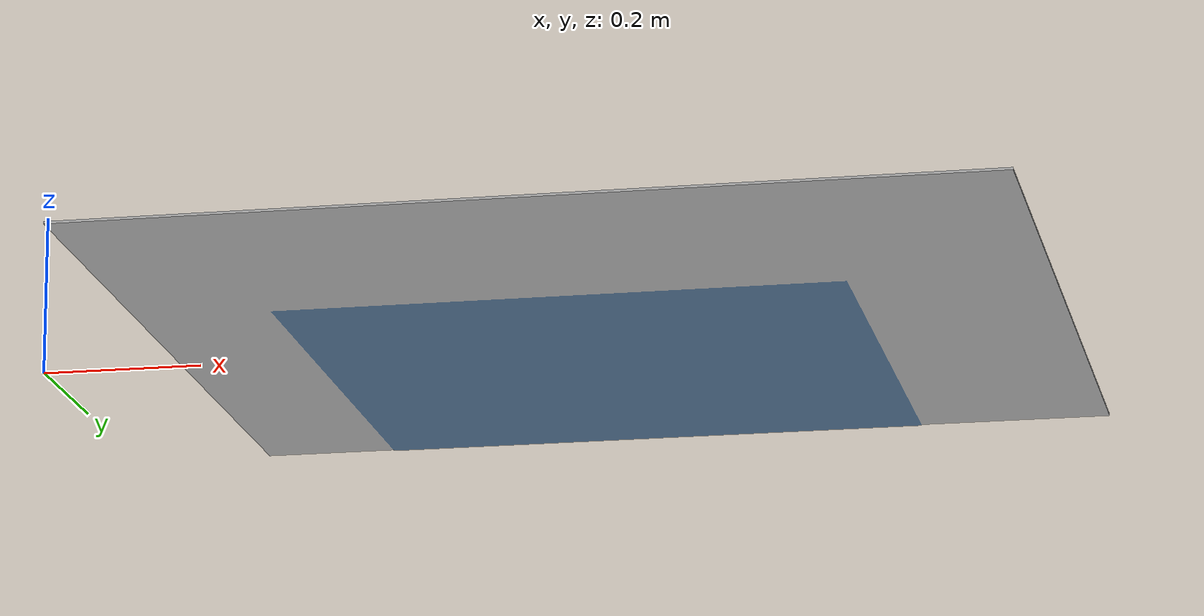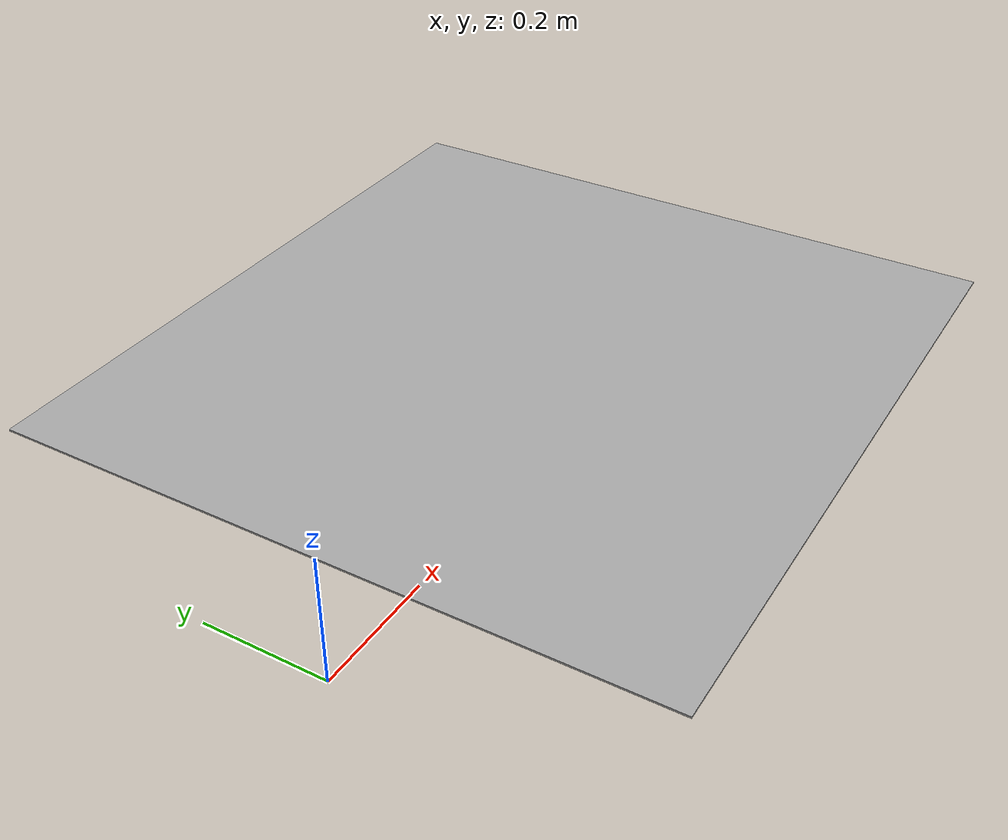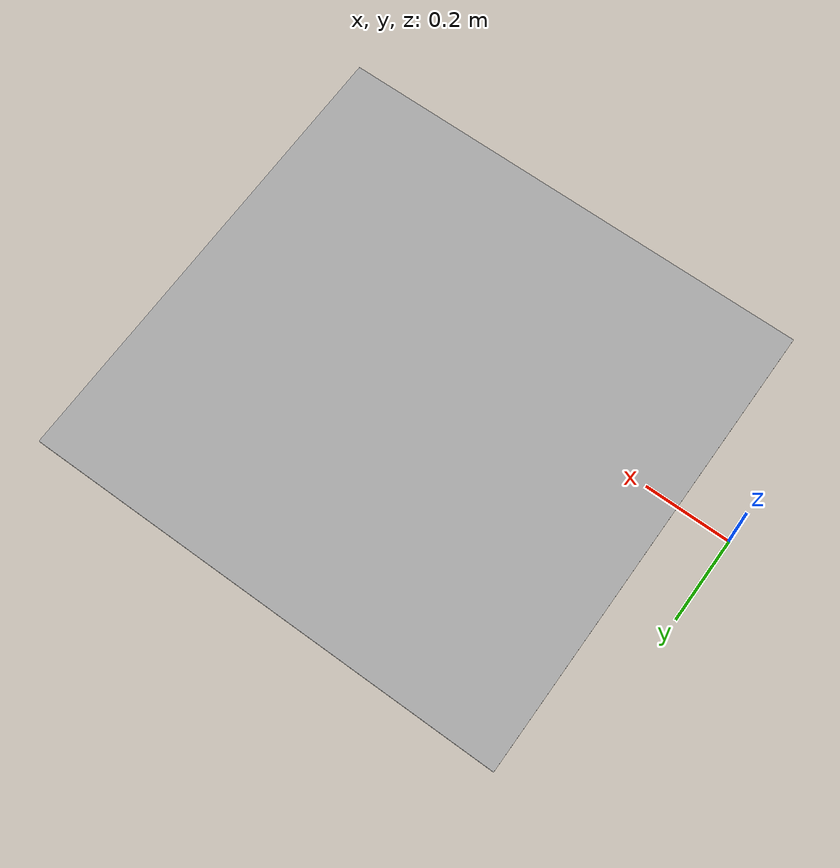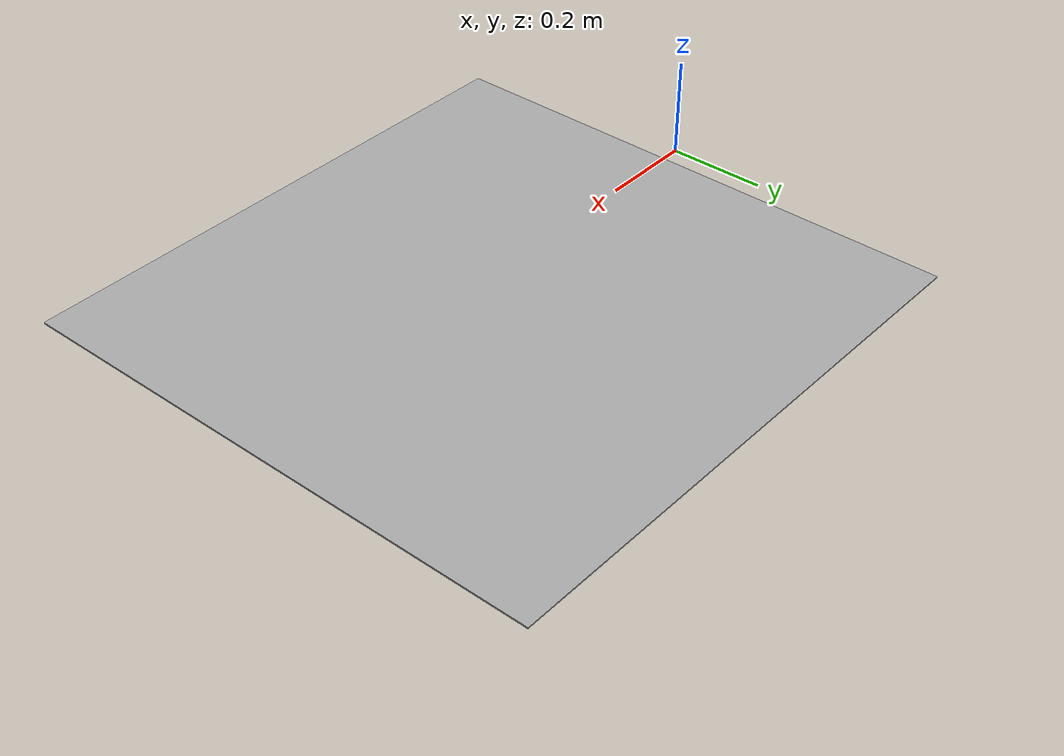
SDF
<?xml version='1.0'?>
<sdf version='1.6'>
  <model name='short_table'>
      <link name='link_0'>
        <pose frame=''>0 0 0 0 -0 0</pose>
        <inertial>
          <mass>1</mass>
          <inertia>
            <ixx>0.166667</ixx>
            <ixy>0</ixy>
            <ixz>0</ixz>
            <iyy>0.166667</iyy>
            <iyz>0</iyz>
            <izz>0.166667</izz>
          </inertia>
        </inertial>
        <visual name='visual'>
          <pose frame=''>-0.0 0 0 0 0 0</pose>
          <geometry>
            <mesh>
              <uri>/home/user/.gazebo/models/short_table/meshes/short_table.dae</uri>
              <scale>2.1 1.2 0.1</scale>
            </mesh>
          </geometry>
          <material>
            <lighting>1</lighting>
            <script>
              <uri>/home/user/.gazebo/models/short_table/materials/scripts</uri>
              <uri>/home/user/.gazebo/models/short_table/materials/textures</uri>
              <name>Short_Table/Image</name>
            </script>
          </material>
          <transparency>0</transparency>
          <cast_shadows>1</cast_shadows>
        </visual>

        <collision name='collision'>
          <laser_retro>0</laser_retro>
          <max_contacts>10</max_contacts>
          <pose frame=''>0 0 0 0 -0 0</pose>
          <geometry>
            <box>
              <size>1.15 1.15 0.122</size>
            </box>

          </geometry>
          <surface>
            <friction>
              <ode>
                <mu>100</mu>
                <mu2>100</mu2>
                <fdir1>0 0 0</fdir1>
                <slip1>0</slip1>
                <slip2>0</slip2>
              </ode>
              <torsional>
                <coefficient>1</coefficient>
                <patch_radius>0</patch_radius>
                <surface_radius>0</surface_radius>
                <use_patch_radius>1</use_patch_radius>
                <ode>
                  <slip>0</slip>
                </ode>
              </torsional>
            </friction>
            <bounce>
              <restitution_coefficient>0</restitution_coefficient>
              <threshold>1e+06</threshold>
            </bounce>
            <contact>
              <collide_without_contact>0</collide_without_contact>
              <collide_without_contact_bitmask>1</collide_without_contact_bitmask>
              <collide_bitmask>1</collide_bitmask>
              <ode>
                <soft_cfm>0</soft_cfm>
                <soft_erp>0.2</soft_erp>
                <kp>1e+13</kp>
                <kd>1</kd>
                <max_vel>0.01</max_vel>
                <min_depth>0.001</min_depth>
              </ode>
              <bullet>
                <split_impulse>1</split_impulse>
                <split_impulse_penetration_threshold>-0.01</split_impulse_penetration_threshold>
                <soft_cfm>0</soft_cfm>
                <soft_erp>0.2</soft_erp>
                <kp>1e+13</kp>
                <kd>1</kd>
              </bullet>
            </contact>
          </surface>
        </collision>
        <self_collide>0</self_collide>
        <kinematic>0</kinematic>
      </link>
      <static>1</static>
      <allow_auto_disable>1</allow_auto_disable>
      <pose frame=''>0.688426 0.117322 0 0 -0 0</pose>
  </model>
</sdf>
